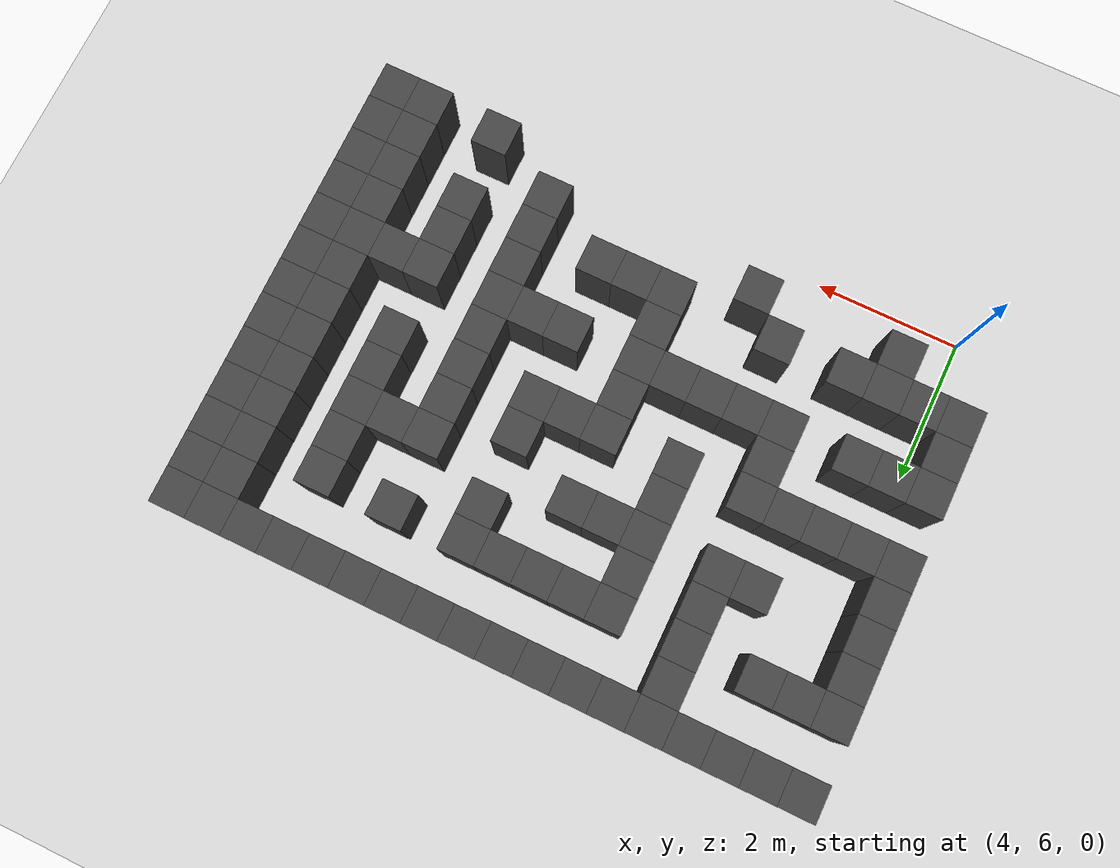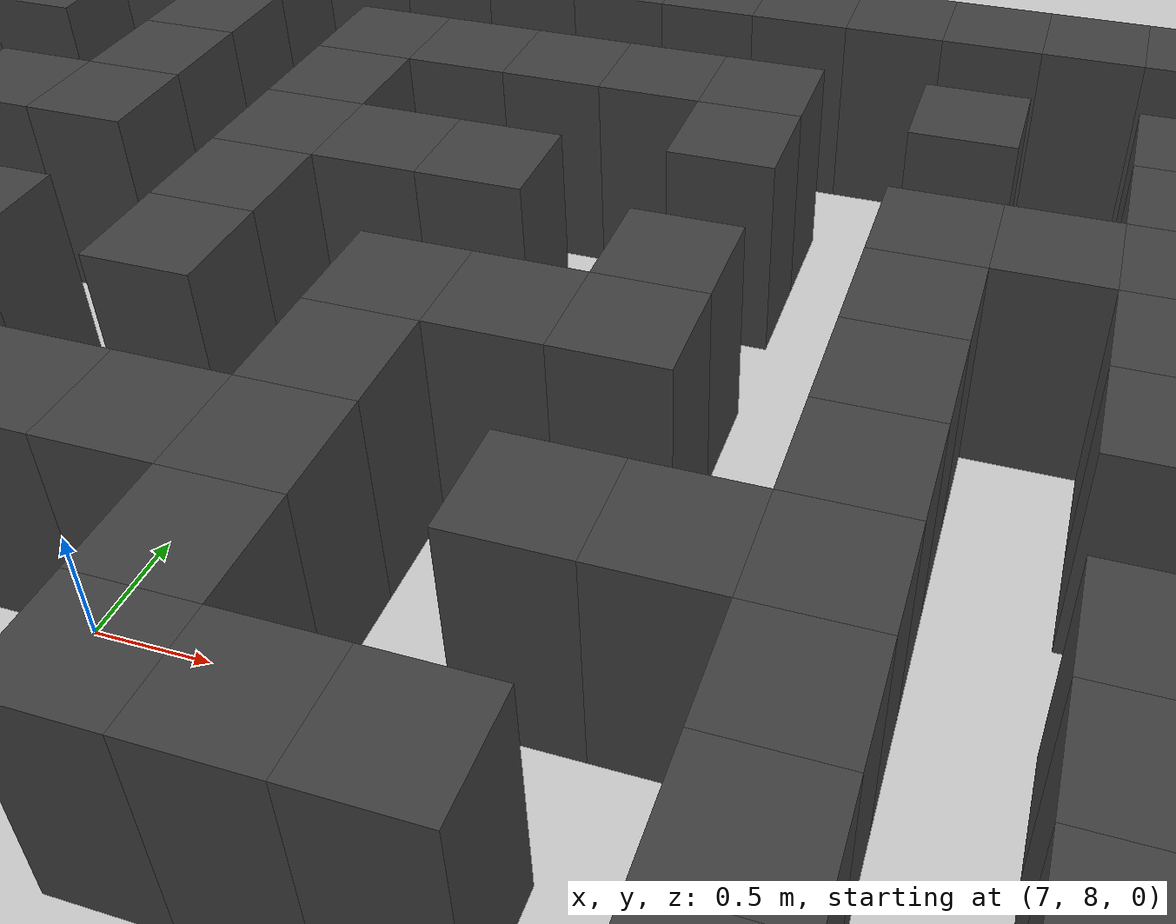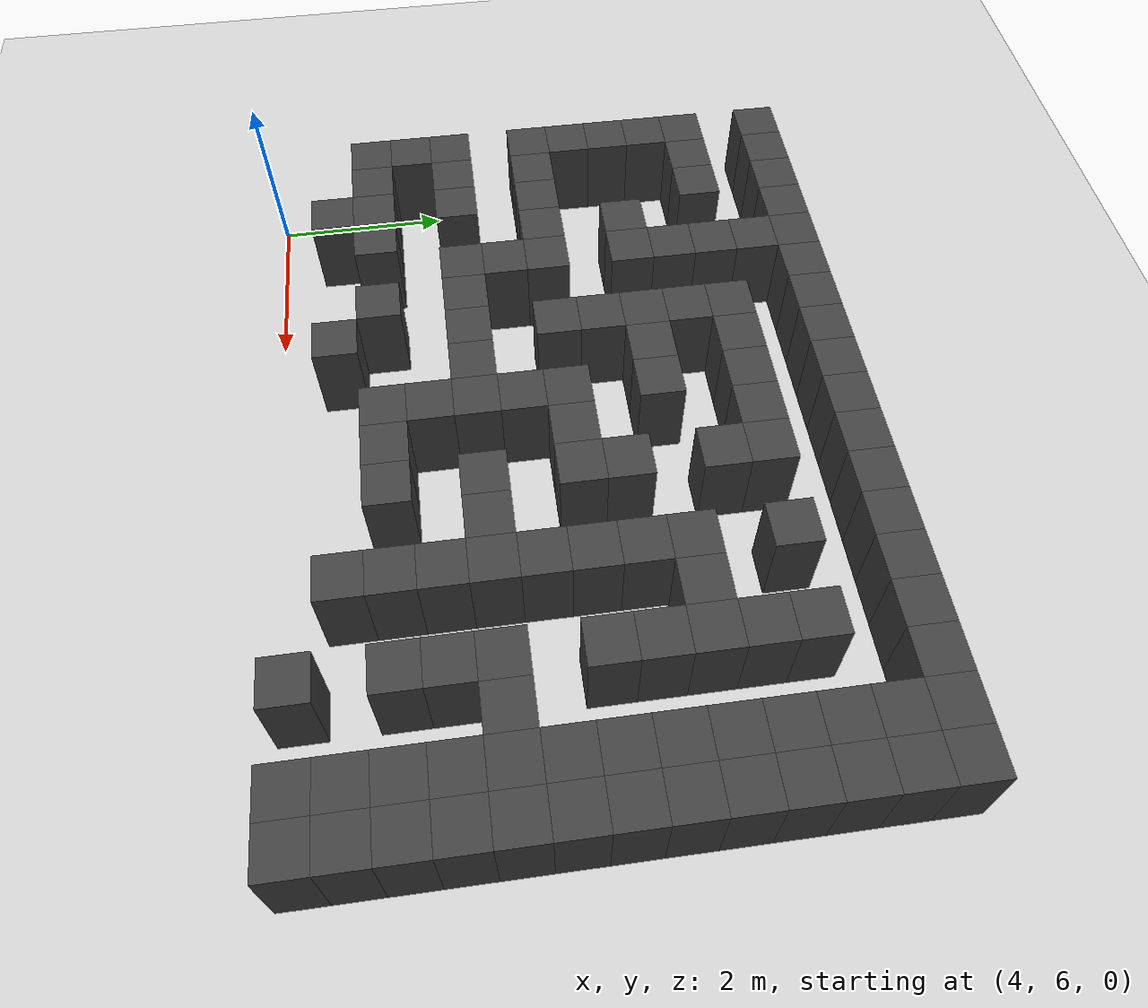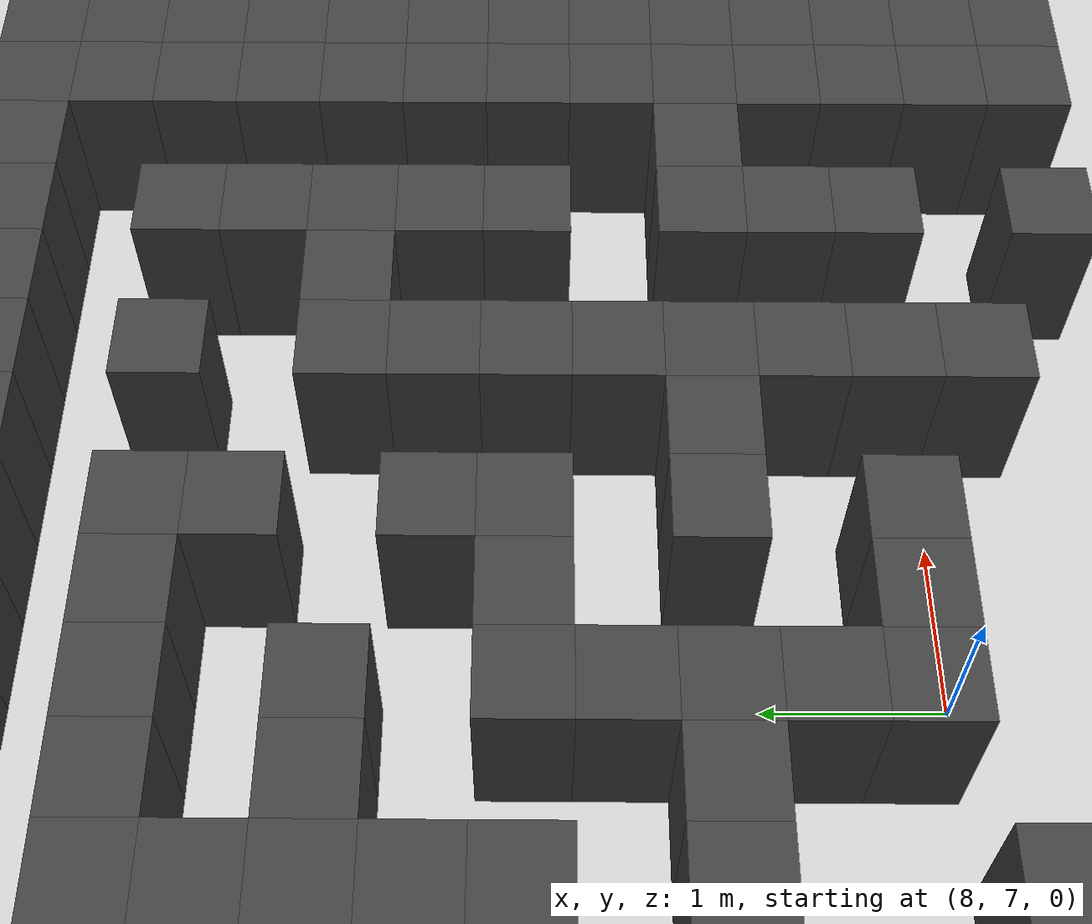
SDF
<sdf version="1.7">
 <world name="map_18596">
  <model name="ground_plane">
   <static>true</static>
   <link name="link">
    <collision name="collision">
     <geometry><plane><normal>0 0 1</normal><size>200 200</size></plane></geometry>
    </collision>
    <visual name="visual">
     <geometry><plane><normal>0 0 1</normal><size>200 200</size></plane></geometry>
     <material><ambient>0.8 0.8 0.8 1</ambient><diffuse>0.8 0.8 0.8 1</diffuse></material>
    </visual>
   </link>
  </model>
  <model name="maze_environment">
   <static>true</static>
   <link name="wall_32">
    <pose>3.750 12.250 0.500 0 0 0</pose>
    <collision name="col"><geometry><box><size>0.5 0.5 1.0</size></box></geometry></collision>
    <visual name="vis">
     <geometry><box><size>0.5 0.5 1.0</size></box></geometry>
     <material><ambient>0.15 0.15 0.15 1</ambient><diffuse>0.25 0.25 0.25 1</diffuse></material>
    </visual>
   </link>
   <link name="wall_33">
    <pose>4.250 12.250 0.500 0 0 0</pose>
    <collision name="col"><geometry><box><size>0.5 0.5 1.0</size></box></geometry></collision>
    <visual name="vis">
     <geometry><box><size>0.5 0.5 1.0</size></box></geometry>
     <material><ambient>0.15 0.15 0.15 1</ambient><diffuse>0.25 0.25 0.25 1</diffuse></material>
    </visual>
   </link>
   <link name="wall_34">
    <pose>4.750 12.250 0.500 0 0 0</pose>
    <collision name="col"><geometry><box><size>0.5 0.5 1.0</size></box></geometry></collision>
    <visual name="vis">
     <geometry><box><size>0.5 0.5 1.0</size></box></geometry>
     <material><ambient>0.15 0.15 0.15 1</ambient><diffuse>0.25 0.25 0.25 1</diffuse></material>
    </visual>
   </link>
   <link name="wall_35">
    <pose>5.250 12.250 0.500 0 0 0</pose>
    <collision name="col"><geometry><box><size>0.5 0.5 1.0</size></box></geometry></collision>
    <visual name="vis">
     <geometry><box><size>0.5 0.5 1.0</size></box></geometry>
     <material><ambient>0.15 0.15 0.15 1</ambient><diffuse>0.25 0.25 0.25 1</diffuse></material>
    </visual>
   </link>
   <link name="wall_36">
    <pose>5.750 12.250 0.500 0 0 0</pose>
    <collision name="col"><geometry><box><size>0.5 0.5 1.0</size></box></geometry></collision>
    <visual name="vis">
     <geometry><box><size>0.5 0.5 1.0</size></box></geometry>
     <material><ambient>0.15 0.15 0.15 1</ambient><diffuse>0.25 0.25 0.25 1</diffuse></material>
    </visual>
   </link>
   <link name="wall_37">
    <pose>6.250 12.250 0.500 0 0 0</pose>
    <collision name="col"><geometry><box><size>0.5 0.5 1.0</size></box></geometry></collision>
    <visual name="vis">
     <geometry><box><size>0.5 0.5 1.0</size></box></geometry>
     <material><ambient>0.15 0.15 0.15 1</ambient><diffuse>0.25 0.25 0.25 1</diffuse></material>
    </visual>
   </link>
   <link name="wall_38">
    <pose>6.750 12.250 0.500 0 0 0</pose>
    <collision name="col"><geometry><box><size>0.5 0.5 1.0</size></box></geometry></collision>
    <visual name="vis">
     <geometry><box><size>0.5 0.5 1.0</size></box></geometry>
     <material><ambient>0.15 0.15 0.15 1</ambient><diffuse>0.25 0.25 0.25 1</diffuse></material>
    </visual>
   </link>
   <link name="wall_39">
    <pose>7.250 12.250 0.500 0 0 0</pose>
    <collision name="col"><geometry><box><size>0.5 0.5 1.0</size></box></geometry></collision>
    <visual name="vis">
     <geometry><box><size>0.5 0.5 1.0</size></box></geometry>
     <material><ambient>0.15 0.15 0.15 1</ambient><diffuse>0.25 0.25 0.25 1</diffuse></material>
    </visual>
   </link>
   <link name="wall_40">
    <pose>7.750 12.250 0.500 0 0 0</pose>
    <collision name="col"><geometry><box><size>0.5 0.5 1.0</size></box></geometry></collision>
    <visual name="vis">
     <geometry><box><size>0.5 0.5 1.0</size></box></geometry>
     <material><ambient>0.15 0.15 0.15 1</ambient><diffuse>0.25 0.25 0.25 1</diffuse></material>
    </visual>
   </link>
   <link name="wall_41">
    <pose>8.250 12.250 0.500 0 0 0</pose>
    <collision name="col"><geometry><box><size>0.5 0.5 1.0</size></box></geometry></collision>
    <visual name="vis">
     <geometry><box><size>0.5 0.5 1.0</size></box></geometry>
     <material><ambient>0.15 0.15 0.15 1</ambient><diffuse>0.25 0.25 0.25 1</diffuse></material>
    </visual>
   </link>
   <link name="wall_42">
    <pose>8.750 12.250 0.500 0 0 0</pose>
    <collision name="col"><geometry><box><size>0.5 0.5 1.0</size></box></geometry></collision>
    <visual name="vis">
     <geometry><box><size>0.5 0.5 1.0</size></box></geometry>
     <material><ambient>0.15 0.15 0.15 1</ambient><diffuse>0.25 0.25 0.25 1</diffuse></material>
    </visual>
   </link>
   <link name="wall_43">
    <pose>9.250 12.250 0.500 0 0 0</pose>
    <collision name="col"><geometry><box><size>0.5 0.5 1.0</size></box></geometry></collision>
    <visual name="vis">
     <geometry><box><size>0.5 0.5 1.0</size></box></geometry>
     <material><ambient>0.15 0.15 0.15 1</ambient><diffuse>0.25 0.25 0.25 1</diffuse></material>
    </visual>
   </link>
   <link name="wall_44">
    <pose>9.750 12.250 0.500 0 0 0</pose>
    <collision name="col"><geometry><box><size>0.5 0.5 1.0</size></box></geometry></collision>
    <visual name="vis">
     <geometry><box><size>0.5 0.5 1.0</size></box></geometry>
     <material><ambient>0.15 0.15 0.15 1</ambient><diffuse>0.25 0.25 0.25 1</diffuse></material>
    </visual>
   </link>
   <link name="wall_45">
    <pose>10.250 12.250 0.500 0 0 0</pose>
    <collision name="col"><geometry><box><size>0.5 0.5 1.0</size></box></geometry></collision>
    <visual name="vis">
     <geometry><box><size>0.5 0.5 1.0</size></box></geometry>
     <material><ambient>0.15 0.15 0.15 1</ambient><diffuse>0.25 0.25 0.25 1</diffuse></material>
    </visual>
   </link>
   <link name="wall_46">
    <pose>10.750 12.250 0.500 0 0 0</pose>
    <collision name="col"><geometry><box><size>0.5 0.5 1.0</size></box></geometry></collision>
    <visual name="vis">
     <geometry><box><size>0.5 0.5 1.0</size></box></geometry>
     <material><ambient>0.15 0.15 0.15 1</ambient><diffuse>0.25 0.25 0.25 1</diffuse></material>
    </visual>
   </link>
   <link name="wall_47">
    <pose>11.250 12.250 0.500 0 0 0</pose>
    <collision name="col"><geometry><box><size>0.5 0.5 1.0</size></box></geometry></collision>
    <visual name="vis">
     <geometry><box><size>0.5 0.5 1.0</size></box></geometry>
     <material><ambient>0.15 0.15 0.15 1</ambient><diffuse>0.25 0.25 0.25 1</diffuse></material>
    </visual>
   </link>
   <link name="wall_48">
    <pose>11.750 12.250 0.500 0 0 0</pose>
    <collision name="col"><geometry><box><size>0.5 0.5 1.0</size></box></geometry></collision>
    <visual name="vis">
     <geometry><box><size>0.5 0.5 1.0</size></box></geometry>
     <material><ambient>0.15 0.15 0.15 1</ambient><diffuse>0.25 0.25 0.25 1</diffuse></material>
    </visual>
   </link>
   <link name="wall_49">
    <pose>12.250 12.250 0.500 0 0 0</pose>
    <collision name="col"><geometry><box><size>0.5 0.5 1.0</size></box></geometry></collision>
    <visual name="vis">
     <geometry><box><size>0.5 0.5 1.0</size></box></geometry>
     <material><ambient>0.15 0.15 0.15 1</ambient><diffuse>0.25 0.25 0.25 1</diffuse></material>
    </visual>
   </link>
   <link name="wall_56">
    <pose>5.750 11.750 0.500 0 0 0</pose>
    <collision name="col"><geometry><box><size>0.5 0.5 1.0</size></box></geometry></collision>
    <visual name="vis">
     <geometry><box><size>0.5 0.5 1.0</size></box></geometry>
     <material><ambient>0.15 0.15 0.15 1</ambient><diffuse>0.25 0.25 0.25 1</diffuse></material>
    </visual>
   </link>
   <link name="wall_57">
    <pose>11.750 11.750 0.500 0 0 0</pose>
    <collision name="col"><geometry><box><size>0.5 0.5 1.0</size></box></geometry></collision>
    <visual name="vis">
     <geometry><box><size>0.5 0.5 1.0</size></box></geometry>
     <material><ambient>0.15 0.15 0.15 1</ambient><diffuse>0.25 0.25 0.25 1</diffuse></material>
    </visual>
   </link>
   <link name="wall_58">
    <pose>12.250 11.750 0.500 0 0 0</pose>
    <collision name="col"><geometry><box><size>0.5 0.5 1.0</size></box></geometry></collision>
    <visual name="vis">
     <geometry><box><size>0.5 0.5 1.0</size></box></geometry>
     <material><ambient>0.15 0.15 0.15 1</ambient><diffuse>0.25 0.25 0.25 1</diffuse></material>
    </visual>
   </link>
   <link name="wall_80">
    <pose>3.750 11.250 0.500 0 0 0</pose>
    <collision name="col"><geometry><box><size>0.5 0.5 1.0</size></box></geometry></collision>
    <visual name="vis">
     <geometry><box><size>0.5 0.5 1.0</size></box></geometry>
     <material><ambient>0.15 0.15 0.15 1</ambient><diffuse>0.25 0.25 0.25 1</diffuse></material>
    </visual>
   </link>
   <link name="wall_81">
    <pose>4.250 11.250 0.500 0 0 0</pose>
    <collision name="col"><geometry><box><size>0.5 0.5 1.0</size></box></geometry></collision>
    <visual name="vis">
     <geometry><box><size>0.5 0.5 1.0</size></box></geometry>
     <material><ambient>0.15 0.15 0.15 1</ambient><diffuse>0.25 0.25 0.25 1</diffuse></material>
    </visual>
   </link>
   <link name="wall_82">
    <pose>4.750 11.250 0.500 0 0 0</pose>
    <collision name="col"><geometry><box><size>0.5 0.5 1.0</size></box></geometry></collision>
    <visual name="vis">
     <geometry><box><size>0.5 0.5 1.0</size></box></geometry>
     <material><ambient>0.15 0.15 0.15 1</ambient><diffuse>0.25 0.25 0.25 1</diffuse></material>
    </visual>
   </link>
   <link name="wall_83">
    <pose>5.750 11.250 0.500 0 0 0</pose>
    <collision name="col"><geometry><box><size>0.5 0.5 1.0</size></box></geometry></collision>
    <visual name="vis">
     <geometry><box><size>0.5 0.5 1.0</size></box></geometry>
     <material><ambient>0.15 0.15 0.15 1</ambient><diffuse>0.25 0.25 0.25 1</diffuse></material>
    </visual>
   </link>
   <link name="wall_84">
    <pose>6.750 11.250 0.500 0 0 0</pose>
    <collision name="col"><geometry><box><size>0.5 0.5 1.0</size></box></geometry></collision>
    <visual name="vis">
     <geometry><box><size>0.5 0.5 1.0</size></box></geometry>
     <material><ambient>0.15 0.15 0.15 1</ambient><diffuse>0.25 0.25 0.25 1</diffuse></material>
    </visual>
   </link>
   <link name="wall_85">
    <pose>7.250 11.250 0.500 0 0 0</pose>
    <collision name="col"><geometry><box><size>0.5 0.5 1.0</size></box></geometry></collision>
    <visual name="vis">
     <geometry><box><size>0.5 0.5 1.0</size></box></geometry>
     <material><ambient>0.15 0.15 0.15 1</ambient><diffuse>0.25 0.25 0.25 1</diffuse></material>
    </visual>
   </link>
   <link name="wall_86">
    <pose>7.750 11.250 0.500 0 0 0</pose>
    <collision name="col"><geometry><box><size>0.5 0.5 1.0</size></box></geometry></collision>
    <visual name="vis">
     <geometry><box><size>0.5 0.5 1.0</size></box></geometry>
     <material><ambient>0.15 0.15 0.15 1</ambient><diffuse>0.25 0.25 0.25 1</diffuse></material>
    </visual>
   </link>
   <link name="wall_87">
    <pose>8.250 11.250 0.500 0 0 0</pose>
    <collision name="col"><geometry><box><size>0.5 0.5 1.0</size></box></geometry></collision>
    <visual name="vis">
     <geometry><box><size>0.5 0.5 1.0</size></box></geometry>
     <material><ambient>0.15 0.15 0.15 1</ambient><diffuse>0.25 0.25 0.25 1</diffuse></material>
    </visual>
   </link>
   <link name="wall_88">
    <pose>8.750 11.250 0.500 0 0 0</pose>
    <collision name="col"><geometry><box><size>0.5 0.5 1.0</size></box></geometry></collision>
    <visual name="vis">
     <geometry><box><size>0.5 0.5 1.0</size></box></geometry>
     <material><ambient>0.15 0.15 0.15 1</ambient><diffuse>0.25 0.25 0.25 1</diffuse></material>
    </visual>
   </link>
   <link name="wall_89">
    <pose>9.750 11.250 0.500 0 0 0</pose>
    <collision name="col"><geometry><box><size>0.5 0.5 1.0</size></box></geometry></collision>
    <visual name="vis">
     <geometry><box><size>0.5 0.5 1.0</size></box></geometry>
     <material><ambient>0.15 0.15 0.15 1</ambient><diffuse>0.25 0.25 0.25 1</diffuse></material>
    </visual>
   </link>
   <link name="wall_90">
    <pose>10.750 11.250 0.500 0 0 0</pose>
    <collision name="col"><geometry><box><size>0.5 0.5 1.0</size></box></geometry></collision>
    <visual name="vis">
     <geometry><box><size>0.5 0.5 1.0</size></box></geometry>
     <material><ambient>0.15 0.15 0.15 1</ambient><diffuse>0.25 0.25 0.25 1</diffuse></material>
    </visual>
   </link>
   <link name="wall_91">
    <pose>11.750 11.250 0.500 0 0 0</pose>
    <collision name="col"><geometry><box><size>0.5 0.5 1.0</size></box></geometry></collision>
    <visual name="vis">
     <geometry><box><size>0.5 0.5 1.0</size></box></geometry>
     <material><ambient>0.15 0.15 0.15 1</ambient><diffuse>0.25 0.25 0.25 1</diffuse></material>
    </visual>
   </link>
   <link name="wall_92">
    <pose>12.250 11.250 0.500 0 0 0</pose>
    <collision name="col"><geometry><box><size>0.5 0.5 1.0</size></box></geometry></collision>
    <visual name="vis">
     <geometry><box><size>0.5 0.5 1.0</size></box></geometry>
     <material><ambient>0.15 0.15 0.15 1</ambient><diffuse>0.25 0.25 0.25 1</diffuse></material>
    </visual>
   </link>
   <link name="wall_100">
    <pose>3.750 10.750 0.500 0 0 0</pose>
    <collision name="col"><geometry><box><size>0.5 0.5 1.0</size></box></geometry></collision>
    <visual name="vis">
     <geometry><box><size>0.5 0.5 1.0</size></box></geometry>
     <material><ambient>0.15 0.15 0.15 1</ambient><diffuse>0.25 0.25 0.25 1</diffuse></material>
    </visual>
   </link>
   <link name="wall_101">
    <pose>5.750 10.750 0.500 0 0 0</pose>
    <collision name="col"><geometry><box><size>0.5 0.5 1.0</size></box></geometry></collision>
    <visual name="vis">
     <geometry><box><size>0.5 0.5 1.0</size></box></geometry>
     <material><ambient>0.15 0.15 0.15 1</ambient><diffuse>0.25 0.25 0.25 1</diffuse></material>
    </visual>
   </link>
   <link name="wall_102">
    <pose>6.750 10.750 0.500 0 0 0</pose>
    <collision name="col"><geometry><box><size>0.5 0.5 1.0</size></box></geometry></collision>
    <visual name="vis">
     <geometry><box><size>0.5 0.5 1.0</size></box></geometry>
     <material><ambient>0.15 0.15 0.15 1</ambient><diffuse>0.25 0.25 0.25 1</diffuse></material>
    </visual>
   </link>
   <link name="wall_103">
    <pose>8.750 10.750 0.500 0 0 0</pose>
    <collision name="col"><geometry><box><size>0.5 0.5 1.0</size></box></geometry></collision>
    <visual name="vis">
     <geometry><box><size>0.5 0.5 1.0</size></box></geometry>
     <material><ambient>0.15 0.15 0.15 1</ambient><diffuse>0.25 0.25 0.25 1</diffuse></material>
    </visual>
   </link>
   <link name="wall_104">
    <pose>10.750 10.750 0.500 0 0 0</pose>
    <collision name="col"><geometry><box><size>0.5 0.5 1.0</size></box></geometry></collision>
    <visual name="vis">
     <geometry><box><size>0.5 0.5 1.0</size></box></geometry>
     <material><ambient>0.15 0.15 0.15 1</ambient><diffuse>0.25 0.25 0.25 1</diffuse></material>
    </visual>
   </link>
   <link name="wall_105">
    <pose>11.750 10.750 0.500 0 0 0</pose>
    <collision name="col"><geometry><box><size>0.5 0.5 1.0</size></box></geometry></collision>
    <visual name="vis">
     <geometry><box><size>0.5 0.5 1.0</size></box></geometry>
     <material><ambient>0.15 0.15 0.15 1</ambient><diffuse>0.25 0.25 0.25 1</diffuse></material>
    </visual>
   </link>
   <link name="wall_106">
    <pose>12.250 10.750 0.500 0 0 0</pose>
    <collision name="col"><geometry><box><size>0.5 0.5 1.0</size></box></geometry></collision>
    <visual name="vis">
     <geometry><box><size>0.5 0.5 1.0</size></box></geometry>
     <material><ambient>0.15 0.15 0.15 1</ambient><diffuse>0.25 0.25 0.25 1</diffuse></material>
    </visual>
   </link>
   <link name="wall_133">
    <pose>3.750 10.250 0.500 0 0 0</pose>
    <collision name="col"><geometry><box><size>0.5 0.5 1.0</size></box></geometry></collision>
    <visual name="vis">
     <geometry><box><size>0.5 0.5 1.0</size></box></geometry>
     <material><ambient>0.15 0.15 0.15 1</ambient><diffuse>0.25 0.25 0.25 1</diffuse></material>
    </visual>
   </link>
   <link name="wall_134">
    <pose>5.250 10.250 0.500 0 0 0</pose>
    <collision name="col"><geometry><box><size>0.5 0.5 1.0</size></box></geometry></collision>
    <visual name="vis">
     <geometry><box><size>0.5 0.5 1.0</size></box></geometry>
     <material><ambient>0.15 0.15 0.15 1</ambient><diffuse>0.25 0.25 0.25 1</diffuse></material>
    </visual>
   </link>
   <link name="wall_135">
    <pose>5.750 10.250 0.500 0 0 0</pose>
    <collision name="col"><geometry><box><size>0.5 0.5 1.0</size></box></geometry></collision>
    <visual name="vis">
     <geometry><box><size>0.5 0.5 1.0</size></box></geometry>
     <material><ambient>0.15 0.15 0.15 1</ambient><diffuse>0.25 0.25 0.25 1</diffuse></material>
    </visual>
   </link>
   <link name="wall_136">
    <pose>6.750 10.250 0.500 0 0 0</pose>
    <collision name="col"><geometry><box><size>0.5 0.5 1.0</size></box></geometry></collision>
    <visual name="vis">
     <geometry><box><size>0.5 0.5 1.0</size></box></geometry>
     <material><ambient>0.15 0.15 0.15 1</ambient><diffuse>0.25 0.25 0.25 1</diffuse></material>
    </visual>
   </link>
   <link name="wall_137">
    <pose>7.250 10.250 0.500 0 0 0</pose>
    <collision name="col"><geometry><box><size>0.5 0.5 1.0</size></box></geometry></collision>
    <visual name="vis">
     <geometry><box><size>0.5 0.5 1.0</size></box></geometry>
     <material><ambient>0.15 0.15 0.15 1</ambient><diffuse>0.25 0.25 0.25 1</diffuse></material>
    </visual>
   </link>
   <link name="wall_138">
    <pose>7.750 10.250 0.500 0 0 0</pose>
    <collision name="col"><geometry><box><size>0.5 0.5 1.0</size></box></geometry></collision>
    <visual name="vis">
     <geometry><box><size>0.5 0.5 1.0</size></box></geometry>
     <material><ambient>0.15 0.15 0.15 1</ambient><diffuse>0.25 0.25 0.25 1</diffuse></material>
    </visual>
   </link>
   <link name="wall_139">
    <pose>9.750 10.250 0.500 0 0 0</pose>
    <collision name="col"><geometry><box><size>0.5 0.5 1.0</size></box></geometry></collision>
    <visual name="vis">
     <geometry><box><size>0.5 0.5 1.0</size></box></geometry>
     <material><ambient>0.15 0.15 0.15 1</ambient><diffuse>0.25 0.25 0.25 1</diffuse></material>
    </visual>
   </link>
   <link name="wall_140">
    <pose>10.250 10.250 0.500 0 0 0</pose>
    <collision name="col"><geometry><box><size>0.5 0.5 1.0</size></box></geometry></collision>
    <visual name="vis">
     <geometry><box><size>0.5 0.5 1.0</size></box></geometry>
     <material><ambient>0.15 0.15 0.15 1</ambient><diffuse>0.25 0.25 0.25 1</diffuse></material>
    </visual>
   </link>
   <link name="wall_141">
    <pose>10.750 10.250 0.500 0 0 0</pose>
    <collision name="col"><geometry><box><size>0.5 0.5 1.0</size></box></geometry></collision>
    <visual name="vis">
     <geometry><box><size>0.5 0.5 1.0</size></box></geometry>
     <material><ambient>0.15 0.15 0.15 1</ambient><diffuse>0.25 0.25 0.25 1</diffuse></material>
    </visual>
   </link>
   <link name="wall_142">
    <pose>11.750 10.250 0.500 0 0 0</pose>
    <collision name="col"><geometry><box><size>0.5 0.5 1.0</size></box></geometry></collision>
    <visual name="vis">
     <geometry><box><size>0.5 0.5 1.0</size></box></geometry>
     <material><ambient>0.15 0.15 0.15 1</ambient><diffuse>0.25 0.25 0.25 1</diffuse></material>
    </visual>
   </link>
   <link name="wall_143">
    <pose>12.250 10.250 0.500 0 0 0</pose>
    <collision name="col"><geometry><box><size>0.5 0.5 1.0</size></box></geometry></collision>
    <visual name="vis">
     <geometry><box><size>0.5 0.5 1.0</size></box></geometry>
     <material><ambient>0.15 0.15 0.15 1</ambient><diffuse>0.25 0.25 0.25 1</diffuse></material>
    </visual>
   </link>
   <link name="wall_151">
    <pose>3.750 9.750 0.500 0 0 0</pose>
    <collision name="col"><geometry><box><size>0.5 0.5 1.0</size></box></geometry></collision>
    <visual name="vis">
     <geometry><box><size>0.5 0.5 1.0</size></box></geometry>
     <material><ambient>0.15 0.15 0.15 1</ambient><diffuse>0.25 0.25 0.25 1</diffuse></material>
    </visual>
   </link>
   <link name="wall_152">
    <pose>6.750 9.750 0.500 0 0 0</pose>
    <collision name="col"><geometry><box><size>0.5 0.5 1.0</size></box></geometry></collision>
    <visual name="vis">
     <geometry><box><size>0.5 0.5 1.0</size></box></geometry>
     <material><ambient>0.15 0.15 0.15 1</ambient><diffuse>0.25 0.25 0.25 1</diffuse></material>
    </visual>
   </link>
   <link name="wall_153">
    <pose>8.750 9.750 0.500 0 0 0</pose>
    <collision name="col"><geometry><box><size>0.5 0.5 1.0</size></box></geometry></collision>
    <visual name="vis">
     <geometry><box><size>0.5 0.5 1.0</size></box></geometry>
     <material><ambient>0.15 0.15 0.15 1</ambient><diffuse>0.25 0.25 0.25 1</diffuse></material>
    </visual>
   </link>
   <link name="wall_154">
    <pose>9.750 9.750 0.500 0 0 0</pose>
    <collision name="col"><geometry><box><size>0.5 0.5 1.0</size></box></geometry></collision>
    <visual name="vis">
     <geometry><box><size>0.5 0.5 1.0</size></box></geometry>
     <material><ambient>0.15 0.15 0.15 1</ambient><diffuse>0.25 0.25 0.25 1</diffuse></material>
    </visual>
   </link>
   <link name="wall_155">
    <pose>10.750 9.750 0.500 0 0 0</pose>
    <collision name="col"><geometry><box><size>0.5 0.5 1.0</size></box></geometry></collision>
    <visual name="vis">
     <geometry><box><size>0.5 0.5 1.0</size></box></geometry>
     <material><ambient>0.15 0.15 0.15 1</ambient><diffuse>0.25 0.25 0.25 1</diffuse></material>
    </visual>
   </link>
   <link name="wall_156">
    <pose>11.750 9.750 0.500 0 0 0</pose>
    <collision name="col"><geometry><box><size>0.5 0.5 1.0</size></box></geometry></collision>
    <visual name="vis">
     <geometry><box><size>0.5 0.5 1.0</size></box></geometry>
     <material><ambient>0.15 0.15 0.15 1</ambient><diffuse>0.25 0.25 0.25 1</diffuse></material>
    </visual>
   </link>
   <link name="wall_157">
    <pose>12.250 9.750 0.500 0 0 0</pose>
    <collision name="col"><geometry><box><size>0.5 0.5 1.0</size></box></geometry></collision>
    <visual name="vis">
     <geometry><box><size>0.5 0.5 1.0</size></box></geometry>
     <material><ambient>0.15 0.15 0.15 1</ambient><diffuse>0.25 0.25 0.25 1</diffuse></material>
    </visual>
   </link>
   <link name="wall_183">
    <pose>3.750 9.250 0.500 0 0 0</pose>
    <collision name="col"><geometry><box><size>0.5 0.5 1.0</size></box></geometry></collision>
    <visual name="vis">
     <geometry><box><size>0.5 0.5 1.0</size></box></geometry>
     <material><ambient>0.15 0.15 0.15 1</ambient><diffuse>0.25 0.25 0.25 1</diffuse></material>
    </visual>
   </link>
   <link name="wall_184">
    <pose>4.250 9.250 0.500 0 0 0</pose>
    <collision name="col"><geometry><box><size>0.5 0.5 1.0</size></box></geometry></collision>
    <visual name="vis">
     <geometry><box><size>0.5 0.5 1.0</size></box></geometry>
     <material><ambient>0.15 0.15 0.15 1</ambient><diffuse>0.25 0.25 0.25 1</diffuse></material>
    </visual>
   </link>
   <link name="wall_185">
    <pose>4.750 9.250 0.500 0 0 0</pose>
    <collision name="col"><geometry><box><size>0.5 0.5 1.0</size></box></geometry></collision>
    <visual name="vis">
     <geometry><box><size>0.5 0.5 1.0</size></box></geometry>
     <material><ambient>0.15 0.15 0.15 1</ambient><diffuse>0.25 0.25 0.25 1</diffuse></material>
    </visual>
   </link>
   <link name="wall_186">
    <pose>5.250 9.250 0.500 0 0 0</pose>
    <collision name="col"><geometry><box><size>0.5 0.5 1.0</size></box></geometry></collision>
    <visual name="vis">
     <geometry><box><size>0.5 0.5 1.0</size></box></geometry>
     <material><ambient>0.15 0.15 0.15 1</ambient><diffuse>0.25 0.25 0.25 1</diffuse></material>
    </visual>
   </link>
   <link name="wall_187">
    <pose>5.750 9.250 0.500 0 0 0</pose>
    <collision name="col"><geometry><box><size>0.5 0.5 1.0</size></box></geometry></collision>
    <visual name="vis">
     <geometry><box><size>0.5 0.5 1.0</size></box></geometry>
     <material><ambient>0.15 0.15 0.15 1</ambient><diffuse>0.25 0.25 0.25 1</diffuse></material>
    </visual>
   </link>
   <link name="wall_188">
    <pose>6.750 9.250 0.500 0 0 0</pose>
    <collision name="col"><geometry><box><size>0.5 0.5 1.0</size></box></geometry></collision>
    <visual name="vis">
     <geometry><box><size>0.5 0.5 1.0</size></box></geometry>
     <material><ambient>0.15 0.15 0.15 1</ambient><diffuse>0.25 0.25 0.25 1</diffuse></material>
    </visual>
   </link>
   <link name="wall_189">
    <pose>7.750 9.250 0.500 0 0 0</pose>
    <collision name="col"><geometry><box><size>0.5 0.5 1.0</size></box></geometry></collision>
    <visual name="vis">
     <geometry><box><size>0.5 0.5 1.0</size></box></geometry>
     <material><ambient>0.15 0.15 0.15 1</ambient><diffuse>0.25 0.25 0.25 1</diffuse></material>
    </visual>
   </link>
   <link name="wall_190">
    <pose>8.250 9.250 0.500 0 0 0</pose>
    <collision name="col"><geometry><box><size>0.5 0.5 1.0</size></box></geometry></collision>
    <visual name="vis">
     <geometry><box><size>0.5 0.5 1.0</size></box></geometry>
     <material><ambient>0.15 0.15 0.15 1</ambient><diffuse>0.25 0.25 0.25 1</diffuse></material>
    </visual>
   </link>
   <link name="wall_191">
    <pose>8.750 9.250 0.500 0 0 0</pose>
    <collision name="col"><geometry><box><size>0.5 0.5 1.0</size></box></geometry></collision>
    <visual name="vis">
     <geometry><box><size>0.5 0.5 1.0</size></box></geometry>
     <material><ambient>0.15 0.15 0.15 1</ambient><diffuse>0.25 0.25 0.25 1</diffuse></material>
    </visual>
   </link>
   <link name="wall_192">
    <pose>9.750 9.250 0.500 0 0 0</pose>
    <collision name="col"><geometry><box><size>0.5 0.5 1.0</size></box></geometry></collision>
    <visual name="vis">
     <geometry><box><size>0.5 0.5 1.0</size></box></geometry>
     <material><ambient>0.15 0.15 0.15 1</ambient><diffuse>0.25 0.25 0.25 1</diffuse></material>
    </visual>
   </link>
   <link name="wall_193">
    <pose>10.750 9.250 0.500 0 0 0</pose>
    <collision name="col"><geometry><box><size>0.5 0.5 1.0</size></box></geometry></collision>
    <visual name="vis">
     <geometry><box><size>0.5 0.5 1.0</size></box></geometry>
     <material><ambient>0.15 0.15 0.15 1</ambient><diffuse>0.25 0.25 0.25 1</diffuse></material>
    </visual>
   </link>
   <link name="wall_194">
    <pose>11.750 9.250 0.500 0 0 0</pose>
    <collision name="col"><geometry><box><size>0.5 0.5 1.0</size></box></geometry></collision>
    <visual name="vis">
     <geometry><box><size>0.5 0.5 1.0</size></box></geometry>
     <material><ambient>0.15 0.15 0.15 1</ambient><diffuse>0.25 0.25 0.25 1</diffuse></material>
    </visual>
   </link>
   <link name="wall_195">
    <pose>12.250 9.250 0.500 0 0 0</pose>
    <collision name="col"><geometry><box><size>0.5 0.5 1.0</size></box></geometry></collision>
    <visual name="vis">
     <geometry><box><size>0.5 0.5 1.0</size></box></geometry>
     <material><ambient>0.15 0.15 0.15 1</ambient><diffuse>0.25 0.25 0.25 1</diffuse></material>
    </visual>
   </link>
   <link name="wall_203">
    <pose>5.750 8.750 0.500 0 0 0</pose>
    <collision name="col"><geometry><box><size>0.5 0.5 1.0</size></box></geometry></collision>
    <visual name="vis">
     <geometry><box><size>0.5 0.5 1.0</size></box></geometry>
     <material><ambient>0.15 0.15 0.15 1</ambient><diffuse>0.25 0.25 0.25 1</diffuse></material>
    </visual>
   </link>
   <link name="wall_204">
    <pose>7.750 8.750 0.500 0 0 0</pose>
    <collision name="col"><geometry><box><size>0.5 0.5 1.0</size></box></geometry></collision>
    <visual name="vis">
     <geometry><box><size>0.5 0.5 1.0</size></box></geometry>
     <material><ambient>0.15 0.15 0.15 1</ambient><diffuse>0.25 0.25 0.25 1</diffuse></material>
    </visual>
   </link>
   <link name="wall_205">
    <pose>9.750 8.750 0.500 0 0 0</pose>
    <collision name="col"><geometry><box><size>0.5 0.5 1.0</size></box></geometry></collision>
    <visual name="vis">
     <geometry><box><size>0.5 0.5 1.0</size></box></geometry>
     <material><ambient>0.15 0.15 0.15 1</ambient><diffuse>0.25 0.25 0.25 1</diffuse></material>
    </visual>
   </link>
   <link name="wall_206">
    <pose>11.750 8.750 0.500 0 0 0</pose>
    <collision name="col"><geometry><box><size>0.5 0.5 1.0</size></box></geometry></collision>
    <visual name="vis">
     <geometry><box><size>0.5 0.5 1.0</size></box></geometry>
     <material><ambient>0.15 0.15 0.15 1</ambient><diffuse>0.25 0.25 0.25 1</diffuse></material>
    </visual>
   </link>
   <link name="wall_207">
    <pose>12.250 8.750 0.500 0 0 0</pose>
    <collision name="col"><geometry><box><size>0.5 0.5 1.0</size></box></geometry></collision>
    <visual name="vis">
     <geometry><box><size>0.5 0.5 1.0</size></box></geometry>
     <material><ambient>0.15 0.15 0.15 1</ambient><diffuse>0.25 0.25 0.25 1</diffuse></material>
    </visual>
   </link>
   <link name="wall_230">
    <pose>3.750 8.250 0.500 0 0 0</pose>
    <collision name="col"><geometry><box><size>0.5 0.5 1.0</size></box></geometry></collision>
    <visual name="vis">
     <geometry><box><size>0.5 0.5 1.0</size></box></geometry>
     <material><ambient>0.15 0.15 0.15 1</ambient><diffuse>0.25 0.25 0.25 1</diffuse></material>
    </visual>
   </link>
   <link name="wall_231">
    <pose>4.250 8.250 0.500 0 0 0</pose>
    <collision name="col"><geometry><box><size>0.5 0.5 1.0</size></box></geometry></collision>
    <visual name="vis">
     <geometry><box><size>0.5 0.5 1.0</size></box></geometry>
     <material><ambient>0.15 0.15 0.15 1</ambient><diffuse>0.25 0.25 0.25 1</diffuse></material>
    </visual>
   </link>
   <link name="wall_232">
    <pose>4.750 8.250 0.500 0 0 0</pose>
    <collision name="col"><geometry><box><size>0.5 0.5 1.0</size></box></geometry></collision>
    <visual name="vis">
     <geometry><box><size>0.5 0.5 1.0</size></box></geometry>
     <material><ambient>0.15 0.15 0.15 1</ambient><diffuse>0.25 0.25 0.25 1</diffuse></material>
    </visual>
   </link>
   <link name="wall_233">
    <pose>5.750 8.250 0.500 0 0 0</pose>
    <collision name="col"><geometry><box><size>0.5 0.5 1.0</size></box></geometry></collision>
    <visual name="vis">
     <geometry><box><size>0.5 0.5 1.0</size></box></geometry>
     <material><ambient>0.15 0.15 0.15 1</ambient><diffuse>0.25 0.25 0.25 1</diffuse></material>
    </visual>
   </link>
   <link name="wall_234">
    <pose>6.250 8.250 0.500 0 0 0</pose>
    <collision name="col"><geometry><box><size>0.5 0.5 1.0</size></box></geometry></collision>
    <visual name="vis">
     <geometry><box><size>0.5 0.5 1.0</size></box></geometry>
     <material><ambient>0.15 0.15 0.15 1</ambient><diffuse>0.25 0.25 0.25 1</diffuse></material>
    </visual>
   </link>
   <link name="wall_235">
    <pose>6.750 8.250 0.500 0 0 0</pose>
    <collision name="col"><geometry><box><size>0.5 0.5 1.0</size></box></geometry></collision>
    <visual name="vis">
     <geometry><box><size>0.5 0.5 1.0</size></box></geometry>
     <material><ambient>0.15 0.15 0.15 1</ambient><diffuse>0.25 0.25 0.25 1</diffuse></material>
    </visual>
   </link>
   <link name="wall_236">
    <pose>7.250 8.250 0.500 0 0 0</pose>
    <collision name="col"><geometry><box><size>0.5 0.5 1.0</size></box></geometry></collision>
    <visual name="vis">
     <geometry><box><size>0.5 0.5 1.0</size></box></geometry>
     <material><ambient>0.15 0.15 0.15 1</ambient><diffuse>0.25 0.25 0.25 1</diffuse></material>
    </visual>
   </link>
   <link name="wall_237">
    <pose>7.750 8.250 0.500 0 0 0</pose>
    <collision name="col"><geometry><box><size>0.5 0.5 1.0</size></box></geometry></collision>
    <visual name="vis">
     <geometry><box><size>0.5 0.5 1.0</size></box></geometry>
     <material><ambient>0.15 0.15 0.15 1</ambient><diffuse>0.25 0.25 0.25 1</diffuse></material>
    </visual>
   </link>
   <link name="wall_238">
    <pose>8.750 8.250 0.500 0 0 0</pose>
    <collision name="col"><geometry><box><size>0.5 0.5 1.0</size></box></geometry></collision>
    <visual name="vis">
     <geometry><box><size>0.5 0.5 1.0</size></box></geometry>
     <material><ambient>0.15 0.15 0.15 1</ambient><diffuse>0.25 0.25 0.25 1</diffuse></material>
    </visual>
   </link>
   <link name="wall_239">
    <pose>9.250 8.250 0.500 0 0 0</pose>
    <collision name="col"><geometry><box><size>0.5 0.5 1.0</size></box></geometry></collision>
    <visual name="vis">
     <geometry><box><size>0.5 0.5 1.0</size></box></geometry>
     <material><ambient>0.15 0.15 0.15 1</ambient><diffuse>0.25 0.25 0.25 1</diffuse></material>
    </visual>
   </link>
   <link name="wall_240">
    <pose>9.750 8.250 0.500 0 0 0</pose>
    <collision name="col"><geometry><box><size>0.5 0.5 1.0</size></box></geometry></collision>
    <visual name="vis">
     <geometry><box><size>0.5 0.5 1.0</size></box></geometry>
     <material><ambient>0.15 0.15 0.15 1</ambient><diffuse>0.25 0.25 0.25 1</diffuse></material>
    </visual>
   </link>
   <link name="wall_241">
    <pose>10.750 8.250 0.500 0 0 0</pose>
    <collision name="col"><geometry><box><size>0.5 0.5 1.0</size></box></geometry></collision>
    <visual name="vis">
     <geometry><box><size>0.5 0.5 1.0</size></box></geometry>
     <material><ambient>0.15 0.15 0.15 1</ambient><diffuse>0.25 0.25 0.25 1</diffuse></material>
    </visual>
   </link>
   <link name="wall_242">
    <pose>11.250 8.250 0.500 0 0 0</pose>
    <collision name="col"><geometry><box><size>0.5 0.5 1.0</size></box></geometry></collision>
    <visual name="vis">
     <geometry><box><size>0.5 0.5 1.0</size></box></geometry>
     <material><ambient>0.15 0.15 0.15 1</ambient><diffuse>0.25 0.25 0.25 1</diffuse></material>
    </visual>
   </link>
   <link name="wall_243">
    <pose>11.750 8.250 0.500 0 0 0</pose>
    <collision name="col"><geometry><box><size>0.5 0.5 1.0</size></box></geometry></collision>
    <visual name="vis">
     <geometry><box><size>0.5 0.5 1.0</size></box></geometry>
     <material><ambient>0.15 0.15 0.15 1</ambient><diffuse>0.25 0.25 0.25 1</diffuse></material>
    </visual>
   </link>
   <link name="wall_244">
    <pose>12.250 8.250 0.500 0 0 0</pose>
    <collision name="col"><geometry><box><size>0.5 0.5 1.0</size></box></geometry></collision>
    <visual name="vis">
     <geometry><box><size>0.5 0.5 1.0</size></box></geometry>
     <material><ambient>0.15 0.15 0.15 1</ambient><diffuse>0.25 0.25 0.25 1</diffuse></material>
    </visual>
   </link>
   <link name="wall_255">
    <pose>3.750 7.750 0.500 0 0 0</pose>
    <collision name="col"><geometry><box><size>0.5 0.5 1.0</size></box></geometry></collision>
    <visual name="vis">
     <geometry><box><size>0.5 0.5 1.0</size></box></geometry>
     <material><ambient>0.15 0.15 0.15 1</ambient><diffuse>0.25 0.25 0.25 1</diffuse></material>
    </visual>
   </link>
   <link name="wall_256">
    <pose>7.750 7.750 0.500 0 0 0</pose>
    <collision name="col"><geometry><box><size>0.5 0.5 1.0</size></box></geometry></collision>
    <visual name="vis">
     <geometry><box><size>0.5 0.5 1.0</size></box></geometry>
     <material><ambient>0.15 0.15 0.15 1</ambient><diffuse>0.25 0.25 0.25 1</diffuse></material>
    </visual>
   </link>
   <link name="wall_257">
    <pose>9.750 7.750 0.500 0 0 0</pose>
    <collision name="col"><geometry><box><size>0.5 0.5 1.0</size></box></geometry></collision>
    <visual name="vis">
     <geometry><box><size>0.5 0.5 1.0</size></box></geometry>
     <material><ambient>0.15 0.15 0.15 1</ambient><diffuse>0.25 0.25 0.25 1</diffuse></material>
    </visual>
   </link>
   <link name="wall_258">
    <pose>10.750 7.750 0.500 0 0 0</pose>
    <collision name="col"><geometry><box><size>0.5 0.5 1.0</size></box></geometry></collision>
    <visual name="vis">
     <geometry><box><size>0.5 0.5 1.0</size></box></geometry>
     <material><ambient>0.15 0.15 0.15 1</ambient><diffuse>0.25 0.25 0.25 1</diffuse></material>
    </visual>
   </link>
   <link name="wall_259">
    <pose>11.750 7.750 0.500 0 0 0</pose>
    <collision name="col"><geometry><box><size>0.5 0.5 1.0</size></box></geometry></collision>
    <visual name="vis">
     <geometry><box><size>0.5 0.5 1.0</size></box></geometry>
     <material><ambient>0.15 0.15 0.15 1</ambient><diffuse>0.25 0.25 0.25 1</diffuse></material>
    </visual>
   </link>
   <link name="wall_260">
    <pose>12.250 7.750 0.500 0 0 0</pose>
    <collision name="col"><geometry><box><size>0.5 0.5 1.0</size></box></geometry></collision>
    <visual name="vis">
     <geometry><box><size>0.5 0.5 1.0</size></box></geometry>
     <material><ambient>0.15 0.15 0.15 1</ambient><diffuse>0.25 0.25 0.25 1</diffuse></material>
    </visual>
   </link>
   <link name="wall_281">
    <pose>3.750 7.250 0.500 0 0 0</pose>
    <collision name="col"><geometry><box><size>0.5 0.5 1.0</size></box></geometry></collision>
    <visual name="vis">
     <geometry><box><size>0.5 0.5 1.0</size></box></geometry>
     <material><ambient>0.15 0.15 0.15 1</ambient><diffuse>0.25 0.25 0.25 1</diffuse></material>
    </visual>
   </link>
   <link name="wall_282">
    <pose>4.250 7.250 0.500 0 0 0</pose>
    <collision name="col"><geometry><box><size>0.5 0.5 1.0</size></box></geometry></collision>
    <visual name="vis">
     <geometry><box><size>0.5 0.5 1.0</size></box></geometry>
     <material><ambient>0.15 0.15 0.15 1</ambient><diffuse>0.25 0.25 0.25 1</diffuse></material>
    </visual>
   </link>
   <link name="wall_283">
    <pose>4.750 7.250 0.500 0 0 0</pose>
    <collision name="col"><geometry><box><size>0.5 0.5 1.0</size></box></geometry></collision>
    <visual name="vis">
     <geometry><box><size>0.5 0.5 1.0</size></box></geometry>
     <material><ambient>0.15 0.15 0.15 1</ambient><diffuse>0.25 0.25 0.25 1</diffuse></material>
    </visual>
   </link>
   <link name="wall_284">
    <pose>5.250 7.250 0.500 0 0 0</pose>
    <collision name="col"><geometry><box><size>0.5 0.5 1.0</size></box></geometry></collision>
    <visual name="vis">
     <geometry><box><size>0.5 0.5 1.0</size></box></geometry>
     <material><ambient>0.15 0.15 0.15 1</ambient><diffuse>0.25 0.25 0.25 1</diffuse></material>
    </visual>
   </link>
   <link name="wall_285">
    <pose>6.250 7.250 0.500 0 0 0</pose>
    <collision name="col"><geometry><box><size>0.5 0.5 1.0</size></box></geometry></collision>
    <visual name="vis">
     <geometry><box><size>0.5 0.5 1.0</size></box></geometry>
     <material><ambient>0.15 0.15 0.15 1</ambient><diffuse>0.25 0.25 0.25 1</diffuse></material>
    </visual>
   </link>
   <link name="wall_286">
    <pose>7.750 7.250 0.500 0 0 0</pose>
    <collision name="col"><geometry><box><size>0.5 0.5 1.0</size></box></geometry></collision>
    <visual name="vis">
     <geometry><box><size>0.5 0.5 1.0</size></box></geometry>
     <material><ambient>0.15 0.15 0.15 1</ambient><diffuse>0.25 0.25 0.25 1</diffuse></material>
    </visual>
   </link>
   <link name="wall_287">
    <pose>8.250 7.250 0.500 0 0 0</pose>
    <collision name="col"><geometry><box><size>0.5 0.5 1.0</size></box></geometry></collision>
    <visual name="vis">
     <geometry><box><size>0.5 0.5 1.0</size></box></geometry>
     <material><ambient>0.15 0.15 0.15 1</ambient><diffuse>0.25 0.25 0.25 1</diffuse></material>
    </visual>
   </link>
   <link name="wall_288">
    <pose>8.750 7.250 0.500 0 0 0</pose>
    <collision name="col"><geometry><box><size>0.5 0.5 1.0</size></box></geometry></collision>
    <visual name="vis">
     <geometry><box><size>0.5 0.5 1.0</size></box></geometry>
     <material><ambient>0.15 0.15 0.15 1</ambient><diffuse>0.25 0.25 0.25 1</diffuse></material>
    </visual>
   </link>
   <link name="wall_289">
    <pose>9.750 7.250 0.500 0 0 0</pose>
    <collision name="col"><geometry><box><size>0.5 0.5 1.0</size></box></geometry></collision>
    <visual name="vis">
     <geometry><box><size>0.5 0.5 1.0</size></box></geometry>
     <material><ambient>0.15 0.15 0.15 1</ambient><diffuse>0.25 0.25 0.25 1</diffuse></material>
    </visual>
   </link>
   <link name="wall_290">
    <pose>10.750 7.250 0.500 0 0 0</pose>
    <collision name="col"><geometry><box><size>0.5 0.5 1.0</size></box></geometry></collision>
    <visual name="vis">
     <geometry><box><size>0.5 0.5 1.0</size></box></geometry>
     <material><ambient>0.15 0.15 0.15 1</ambient><diffuse>0.25 0.25 0.25 1</diffuse></material>
    </visual>
   </link>
   <link name="wall_291">
    <pose>11.750 7.250 0.500 0 0 0</pose>
    <collision name="col"><geometry><box><size>0.5 0.5 1.0</size></box></geometry></collision>
    <visual name="vis">
     <geometry><box><size>0.5 0.5 1.0</size></box></geometry>
     <material><ambient>0.15 0.15 0.15 1</ambient><diffuse>0.25 0.25 0.25 1</diffuse></material>
    </visual>
   </link>
   <link name="wall_292">
    <pose>12.250 7.250 0.500 0 0 0</pose>
    <collision name="col"><geometry><box><size>0.5 0.5 1.0</size></box></geometry></collision>
    <visual name="vis">
     <geometry><box><size>0.5 0.5 1.0</size></box></geometry>
     <material><ambient>0.15 0.15 0.15 1</ambient><diffuse>0.25 0.25 0.25 1</diffuse></material>
    </visual>
   </link>
   <link name="wall_302">
    <pose>4.750 6.750 0.500 0 0 0</pose>
    <collision name="col"><geometry><box><size>0.5 0.5 1.0</size></box></geometry></collision>
    <visual name="vis">
     <geometry><box><size>0.5 0.5 1.0</size></box></geometry>
     <material><ambient>0.15 0.15 0.15 1</ambient><diffuse>0.25 0.25 0.25 1</diffuse></material>
    </visual>
   </link>
   <link name="wall_303">
    <pose>6.750 6.750 0.500 0 0 0</pose>
    <collision name="col"><geometry><box><size>0.5 0.5 1.0</size></box></geometry></collision>
    <visual name="vis">
     <geometry><box><size>0.5 0.5 1.0</size></box></geometry>
     <material><ambient>0.15 0.15 0.15 1</ambient><diffuse>0.25 0.25 0.25 1</diffuse></material>
    </visual>
   </link>
   <link name="wall_304">
    <pose>9.750 6.750 0.500 0 0 0</pose>
    <collision name="col"><geometry><box><size>0.5 0.5 1.0</size></box></geometry></collision>
    <visual name="vis">
     <geometry><box><size>0.5 0.5 1.0</size></box></geometry>
     <material><ambient>0.15 0.15 0.15 1</ambient><diffuse>0.25 0.25 0.25 1</diffuse></material>
    </visual>
   </link>
   <link name="wall_305">
    <pose>11.750 6.750 0.500 0 0 0</pose>
    <collision name="col"><geometry><box><size>0.5 0.5 1.0</size></box></geometry></collision>
    <visual name="vis">
     <geometry><box><size>0.5 0.5 1.0</size></box></geometry>
     <material><ambient>0.15 0.15 0.15 1</ambient><diffuse>0.25 0.25 0.25 1</diffuse></material>
    </visual>
   </link>
   <link name="wall_306">
    <pose>12.250 6.750 0.500 0 0 0</pose>
    <collision name="col"><geometry><box><size>0.5 0.5 1.0</size></box></geometry></collision>
    <visual name="vis">
     <geometry><box><size>0.5 0.5 1.0</size></box></geometry>
     <material><ambient>0.15 0.15 0.15 1</ambient><diffuse>0.25 0.25 0.25 1</diffuse></material>
    </visual>
   </link>
   <link name="wall_342">
    <pose>10.750 6.250 0.500 0 0 0</pose>
    <collision name="col"><geometry><box><size>0.5 0.5 1.0</size></box></geometry></collision>
    <visual name="vis">
     <geometry><box><size>0.5 0.5 1.0</size></box></geometry>
     <material><ambient>0.15 0.15 0.15 1</ambient><diffuse>0.25 0.25 0.25 1</diffuse></material>
    </visual>
   </link>
   <link name="wall_343">
    <pose>11.750 6.250 0.500 0 0 0</pose>
    <collision name="col"><geometry><box><size>0.5 0.5 1.0</size></box></geometry></collision>
    <visual name="vis">
     <geometry><box><size>0.5 0.5 1.0</size></box></geometry>
     <material><ambient>0.15 0.15 0.15 1</ambient><diffuse>0.25 0.25 0.25 1</diffuse></material>
    </visual>
   </link>
   <link name="wall_344">
    <pose>12.250 6.250 0.500 0 0 0</pose>
    <collision name="col"><geometry><box><size>0.5 0.5 1.0</size></box></geometry></collision>
    <visual name="vis">
     <geometry><box><size>0.5 0.5 1.0</size></box></geometry>
     <material><ambient>0.15 0.15 0.15 1</ambient><diffuse>0.25 0.25 0.25 1</diffuse></material>
    </visual>
   </link>
  </model>
 </world>
</sdf>
